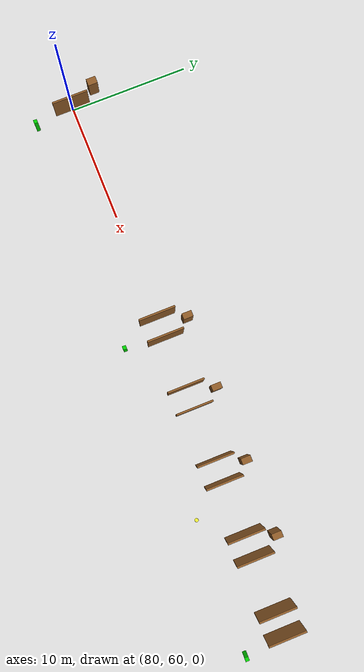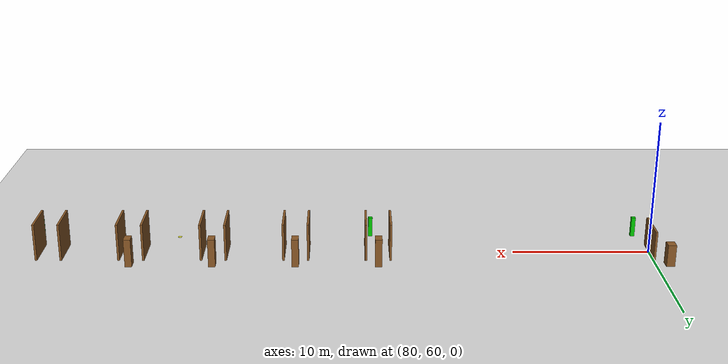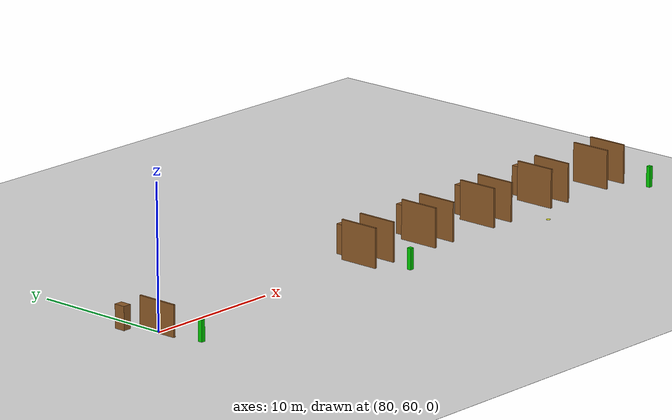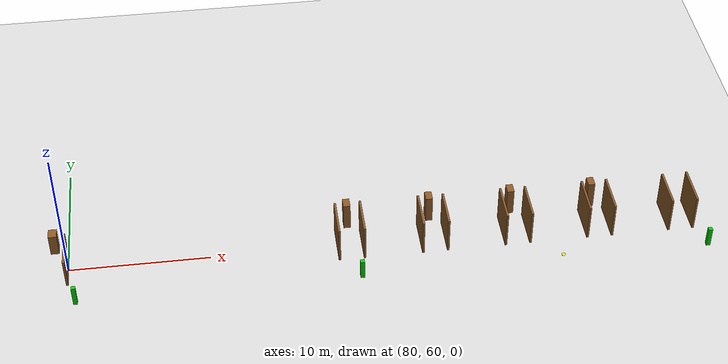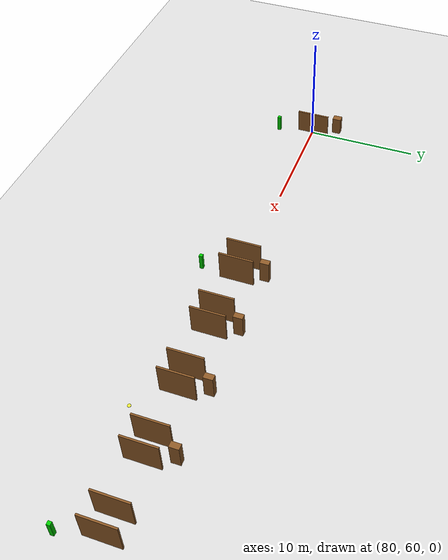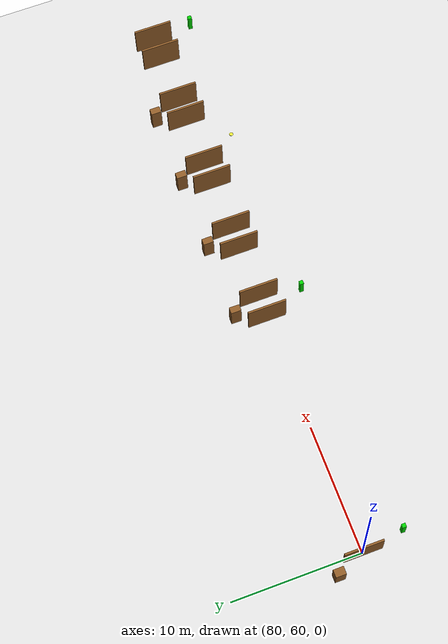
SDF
<sdf version="1.9">
 <world name="realistic_warehouse_150x200m">
  <model name="ground_plane">
   <static>true</static>
   <pose>68.5 102.0 0 0 0 0</pose>
   <link name="ground_link">
    <visual name="ground_visual">
     <geometry><box><size>127.0 194.0 0.01</size></box></geometry>
     <material><ambient>0.85 0.85 0.85 1.0</ambient><diffuse>0.85 0.85 0.85 1.0</diffuse></material>
    </visual>
    <collision name="ground_visual_collision">
     <geometry><box><size>127.0 194.0 0.01</size></box></geometry>
    </collision>
    <collision name="ground_collision">
     <geometry><plane><normal>0 0 1</normal><size>127.0 194.0</size></plane></geometry>
    </collision>
   </link>
  </model>
  <model name="charger_Zone_H_C2_1219">
   <static>true</static>
   <pose>80.5 56.7 0.75 0 0 0</pose>
   <link name="charger_Zone_H_C2_1219_link">
    <visual name="charger_Zone_H_C2_1219_vis">
     <geometry><box><size>0.3 0.3 1.5</size></box></geometry>
     <material><ambient>0.0 0.8 0.0 1.0</ambient><diffuse>0.0 0.8 0.0 1.0</diffuse></material>
    </visual>
    <collision name="charger_Zone_H_C2_1219_vis_collision">
     <geometry><box><size>0.3 0.3 1.5</size></box></geometry>
    </collision>
   </link>
  </model>
  <model name="aisle_R_Zone_H_A4_entry_1398">
   <static>true</static>
   <pose>79.9 60.0 1.1 0 0 0</pose>
   <link name="aisle_R_Zone_H_A4_entry_1398_link">
    <visual name="aisle_R_Zone_H_A4_entry_1398_vis">
     <geometry><box><size>0.15 3.0 2.2</size></box></geometry>
     <material><ambient>0.55 0.35 0.15 1.0</ambient><diffuse>0.55 0.35 0.15 1.0</diffuse></material>
    </visual>
    <collision name="aisle_R_Zone_H_A4_entry_1398_vis_collision">
     <geometry><box><size>0.15 3.0 2.2</size></box></geometry>
    </collision>
   </link>
  </model>
  <model name="rack_Zone_H_A4_S0_1403">
   <static>true</static>
   <pose>79.0 62.2 0.8250000000000001 0 0 0</pose>
   <link name="rack_Zone_H_A4_S0_1403_link">
    <visual name="rack_Zone_H_A4_S0_1403_vis">
     <geometry><box><size>0.6 0.8 1.6500000000000001</size></box></geometry>
     <material><ambient>0.55 0.35 0.15 1.0</ambient><diffuse>0.55 0.35 0.15 1.0</diffuse></material>
    </visual>
    <collision name="rack_Zone_H_A4_S0_1403_vis_collision">
     <geometry><box><size>0.6 0.8 1.6500000000000001</size></box></geometry>
    </collision>
   </link>
  </model>
  <model name="charger_Zone_I_C1_1442">
   <static>true</static>
   <pose>100.5 56.7 0.75 0 0 0</pose>
   <link name="charger_Zone_I_C1_1442_link">
    <visual name="charger_Zone_I_C1_1442_vis">
     <geometry><box><size>0.3 0.3 1.5</size></box></geometry>
     <material><ambient>0.0 0.8 0.0 1.0</ambient><diffuse>0.0 0.8 0.0 1.0</diffuse></material>
    </visual>
    <collision name="charger_Zone_I_C1_1442_vis_collision">
     <geometry><box><size>0.3 0.3 1.5</size></box></geometry>
    </collision>
   </link>
  </model>
  <model name="charger_Zone_I_C2_1444">
   <static>true</static>
   <pose>125.5 56.7 0.75 0 0 0</pose>
   <link name="charger_Zone_I_C2_1444_link">
    <visual name="charger_Zone_I_C2_1444_vis">
     <geometry><box><size>0.3 0.3 1.5</size></box></geometry>
     <material><ambient>0.0 0.8 0.0 1.0</ambient><diffuse>0.0 0.8 0.0 1.0</diffuse></material>
    </visual>
    <collision name="charger_Zone_I_C2_1444_vis_collision">
     <geometry><box><size>0.3 0.3 1.5</size></box></geometry>
    </collision>
   </link>
  </model>
  <model name="cross_Zone_I_entry_1445">
   <static>true</static>
   <pose>115.0 57.0 0.01 0 0 0</pose>
   <link name="cross_Zone_I_entry_1445_link">
    <visual name="cross_Zone_I_entry_1445_vis">
     <geometry><cylinder><radius>0.15</radius><length>0.02</length></cylinder></geometry>
     <material><ambient>0.9 0.9 0.2 1.0</ambient><diffuse>0.9 0.9 0.2 1.0</diffuse></material>
    </visual>
    <collision name="cross_Zone_I_entry_1445_vis_collision">
     <geometry><cylinder><radius>0.15</radius><length>0.02</length></cylinder></geometry>
    </collision>
   </link>
  </model>
  <model name="aisle_L_Zone_I_A0_entry_1446">
   <static>true</static>
   <pose>99.1 60.0 1.4 0 0 0</pose>
   <link name="aisle_L_Zone_I_A0_entry_1446_link">
    <visual name="aisle_L_Zone_I_A0_entry_1446_vis">
     <geometry><box><size>0.15 3.0 2.8</size></box></geometry>
     <material><ambient>0.55 0.35 0.15 1.0</ambient><diffuse>0.55 0.35 0.15 1.0</diffuse></material>
    </visual>
    <collision name="aisle_L_Zone_I_A0_entry_1446_vis_collision">
     <geometry><box><size>0.15 3.0 2.8</size></box></geometry>
    </collision>
   </link>
  </model>
  <model name="aisle_R_Zone_I_A0_entry_1447">
   <static>true</static>
   <pose>100.9 60.0 1.4 0 0 0</pose>
   <link name="aisle_R_Zone_I_A0_entry_1447_link">
    <visual name="aisle_R_Zone_I_A0_entry_1447_vis">
     <geometry><box><size>0.15 3.0 2.8</size></box></geometry>
     <material><ambient>0.55 0.35 0.15 1.0</ambient><diffuse>0.55 0.35 0.15 1.0</diffuse></material>
    </visual>
    <collision name="aisle_R_Zone_I_A0_entry_1447_vis_collision">
     <geometry><box><size>0.15 3.0 2.8</size></box></geometry>
    </collision>
   </link>
  </model>
  <model name="rack_Zone_I_A0_S0_1452">
   <static>true</static>
   <pose>100.0 62.2 1.0499999999999998 0 0 0</pose>
   <link name="rack_Zone_I_A0_S0_1452_link">
    <visual name="rack_Zone_I_A0_S0_1452_vis">
     <geometry><box><size>0.5 0.8 2.0999999999999996</size></box></geometry>
     <material><ambient>0.55 0.35 0.15 1.0</ambient><diffuse>0.55 0.35 0.15 1.0</diffuse></material>
    </visual>
    <collision name="rack_Zone_I_A0_S0_1452_vis_collision">
     <geometry><box><size>0.5 0.8 2.0999999999999996</size></box></geometry>
    </collision>
   </link>
  </model>
  <model name="aisle_L_Zone_I_A1_entry_1466">
   <static>true</static>
   <pose>105.1 60.0 1.4 0 0 0</pose>
   <link name="aisle_L_Zone_I_A1_entry_1466_link">
    <visual name="aisle_L_Zone_I_A1_entry_1466_vis">
     <geometry><box><size>0.15 3.0 2.8</size></box></geometry>
     <material><ambient>0.55 0.35 0.15 1.0</ambient><diffuse>0.55 0.35 0.15 1.0</diffuse></material>
    </visual>
    <collision name="aisle_L_Zone_I_A1_entry_1466_vis_collision">
     <geometry><box><size>0.15 3.0 2.8</size></box></geometry>
    </collision>
   </link>
  </model>
  <model name="aisle_R_Zone_I_A1_entry_1467">
   <static>true</static>
   <pose>106.9 60.0 1.4 0 0 0</pose>
   <link name="aisle_R_Zone_I_A1_entry_1467_link">
    <visual name="aisle_R_Zone_I_A1_entry_1467_vis">
     <geometry><box><size>0.15 3.0 2.8</size></box></geometry>
     <material><ambient>0.55 0.35 0.15 1.0</ambient><diffuse>0.55 0.35 0.15 1.0</diffuse></material>
    </visual>
    <collision name="aisle_R_Zone_I_A1_entry_1467_vis_collision">
     <geometry><box><size>0.15 3.0 2.8</size></box></geometry>
    </collision>
   </link>
  </model>
  <model name="rack_Zone_I_A1_S0_1472">
   <static>true</static>
   <pose>106.0 62.2 1.0499999999999998 0 0 0</pose>
   <link name="rack_Zone_I_A1_S0_1472_link">
    <visual name="rack_Zone_I_A1_S0_1472_vis">
     <geometry><box><size>0.5 0.8 2.0999999999999996</size></box></geometry>
     <material><ambient>0.55 0.35 0.15 1.0</ambient><diffuse>0.55 0.35 0.15 1.0</diffuse></material>
    </visual>
    <collision name="rack_Zone_I_A1_S0_1472_vis_collision">
     <geometry><box><size>0.5 0.8 2.0999999999999996</size></box></geometry>
    </collision>
   </link>
  </model>
  <model name="aisle_L_Zone_I_A2_entry_1486">
   <static>true</static>
   <pose>111.1 60.0 1.4 0 0 0</pose>
   <link name="aisle_L_Zone_I_A2_entry_1486_link">
    <visual name="aisle_L_Zone_I_A2_entry_1486_vis">
     <geometry><box><size>0.15 3.0 2.8</size></box></geometry>
     <material><ambient>0.55 0.35 0.15 1.0</ambient><diffuse>0.55 0.35 0.15 1.0</diffuse></material>
    </visual>
    <collision name="aisle_L_Zone_I_A2_entry_1486_vis_collision">
     <geometry><box><size>0.15 3.0 2.8</size></box></geometry>
    </collision>
   </link>
  </model>
  <model name="aisle_R_Zone_I_A2_entry_1487">
   <static>true</static>
   <pose>112.9 60.0 1.4 0 0 0</pose>
   <link name="aisle_R_Zone_I_A2_entry_1487_link">
    <visual name="aisle_R_Zone_I_A2_entry_1487_vis">
     <geometry><box><size>0.15 3.0 2.8</size></box></geometry>
     <material><ambient>0.55 0.35 0.15 1.0</ambient><diffuse>0.55 0.35 0.15 1.0</diffuse></material>
    </visual>
    <collision name="aisle_R_Zone_I_A2_entry_1487_vis_collision">
     <geometry><box><size>0.15 3.0 2.8</size></box></geometry>
    </collision>
   </link>
  </model>
  <model name="rack_Zone_I_A2_S0_1492">
   <static>true</static>
   <pose>112.0 62.2 1.0499999999999998 0 0 0</pose>
   <link name="rack_Zone_I_A2_S0_1492_link">
    <visual name="rack_Zone_I_A2_S0_1492_vis">
     <geometry><box><size>0.5 0.8 2.0999999999999996</size></box></geometry>
     <material><ambient>0.55 0.35 0.15 1.0</ambient><diffuse>0.55 0.35 0.15 1.0</diffuse></material>
    </visual>
    <collision name="rack_Zone_I_A2_S0_1492_vis_collision">
     <geometry><box><size>0.5 0.8 2.0999999999999996</size></box></geometry>
    </collision>
   </link>
  </model>
  <model name="aisle_L_Zone_I_A3_entry_1506">
   <static>true</static>
   <pose>117.1 60.0 1.4 0 0 0</pose>
   <link name="aisle_L_Zone_I_A3_entry_1506_link">
    <visual name="aisle_L_Zone_I_A3_entry_1506_vis">
     <geometry><box><size>0.15 3.0 2.8</size></box></geometry>
     <material><ambient>0.55 0.35 0.15 1.0</ambient><diffuse>0.55 0.35 0.15 1.0</diffuse></material>
    </visual>
    <collision name="aisle_L_Zone_I_A3_entry_1506_vis_collision">
     <geometry><box><size>0.15 3.0 2.8</size></box></geometry>
    </collision>
   </link>
  </model>
  <model name="aisle_R_Zone_I_A3_entry_1507">
   <static>true</static>
   <pose>118.9 60.0 1.4 0 0 0</pose>
   <link name="aisle_R_Zone_I_A3_entry_1507_link">
    <visual name="aisle_R_Zone_I_A3_entry_1507_vis">
     <geometry><box><size>0.15 3.0 2.8</size></box></geometry>
     <material><ambient>0.55 0.35 0.15 1.0</ambient><diffuse>0.55 0.35 0.15 1.0</diffuse></material>
    </visual>
    <collision name="aisle_R_Zone_I_A3_entry_1507_vis_collision">
     <geometry><box><size>0.15 3.0 2.8</size></box></geometry>
    </collision>
   </link>
  </model>
  <model name="rack_Zone_I_A3_S0_1512">
   <static>true</static>
   <pose>118.0 62.2 1.0499999999999998 0 0 0</pose>
   <link name="rack_Zone_I_A3_S0_1512_link">
    <visual name="rack_Zone_I_A3_S0_1512_vis">
     <geometry><box><size>0.5 0.8 2.0999999999999996</size></box></geometry>
     <material><ambient>0.55 0.35 0.15 1.0</ambient><diffuse>0.55 0.35 0.15 1.0</diffuse></material>
    </visual>
    <collision name="rack_Zone_I_A3_S0_1512_vis_collision">
     <geometry><box><size>0.5 0.8 2.0999999999999996</size></box></geometry>
    </collision>
   </link>
  </model>
  <model name="aisle_L_Zone_I_A4_entry_1526">
   <static>true</static>
   <pose>123.1 60.0 1.4 0 0 0</pose>
   <link name="aisle_L_Zone_I_A4_entry_1526_link">
    <visual name="aisle_L_Zone_I_A4_entry_1526_vis">
     <geometry><box><size>0.15 3.0 2.8</size></box></geometry>
     <material><ambient>0.55 0.35 0.15 1.0</ambient><diffuse>0.55 0.35 0.15 1.0</diffuse></material>
    </visual>
    <collision name="aisle_L_Zone_I_A4_entry_1526_vis_collision">
     <geometry><box><size>0.15 3.0 2.8</size></box></geometry>
    </collision>
   </link>
  </model>
  <model name="aisle_R_Zone_I_A4_entry_1527">
   <static>true</static>
   <pose>124.9 60.0 1.4 0 0 0</pose>
   <link name="aisle_R_Zone_I_A4_entry_1527_link">
    <visual name="aisle_R_Zone_I_A4_entry_1527_vis">
     <geometry><box><size>0.15 3.0 2.8</size></box></geometry>
     <material><ambient>0.55 0.35 0.15 1.0</ambient><diffuse>0.55 0.35 0.15 1.0</diffuse></material>
    </visual>
    <collision name="aisle_R_Zone_I_A4_entry_1527_vis_collision">
     <geometry><box><size>0.15 3.0 2.8</size></box></geometry>
    </collision>
   </link>
  </model>
  <model name="cross_Zone_I_corridor_S_1625">
   <static>true</static>
   <pose>115.0 57.0 0.01 0 0 0</pose>
   <link name="cross_Zone_I_corridor_S_1625_link">
    <visual name="cross_Zone_I_corridor_S_1625_vis">
     <geometry><cylinder><radius>0.15</radius><length>0.02</length></cylinder></geometry>
     <material><ambient>0.9 0.9 0.2 1.0</ambient><diffuse>0.9 0.9 0.2 1.0</diffuse></material>
    </visual>
    <collision name="cross_Zone_I_corridor_S_1625_vis_collision">
     <geometry><cylinder><radius>0.15</radius><length>0.02</length></cylinder></geometry>
    </collision>
   </link>
  </model>
 </world>
</sdf>
